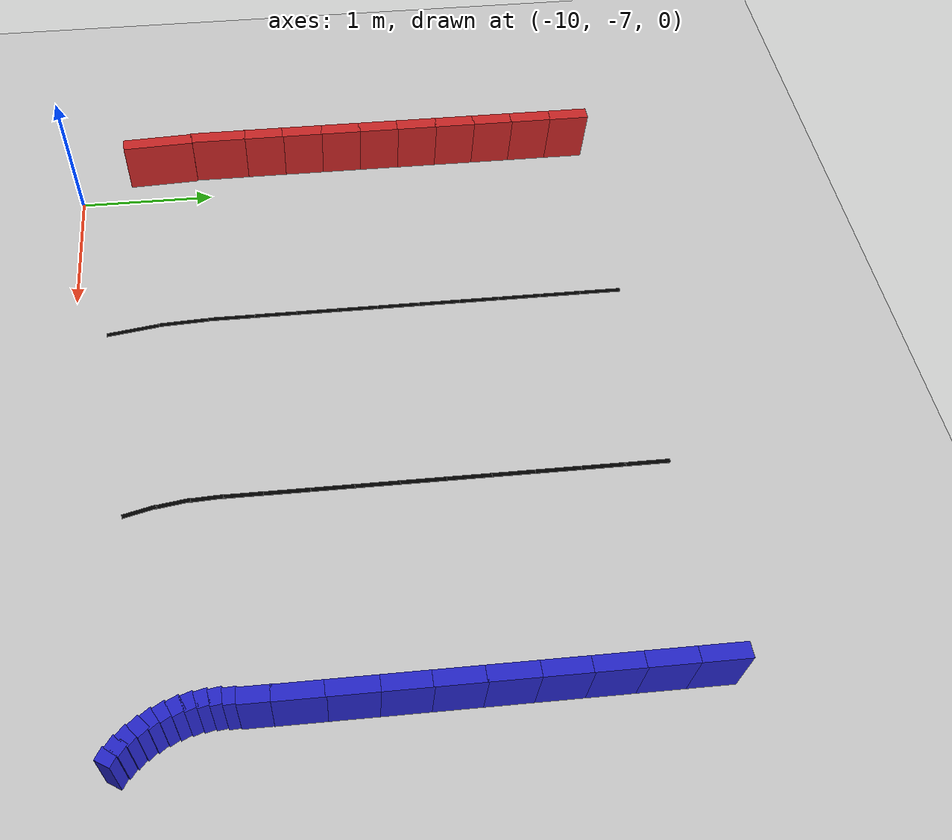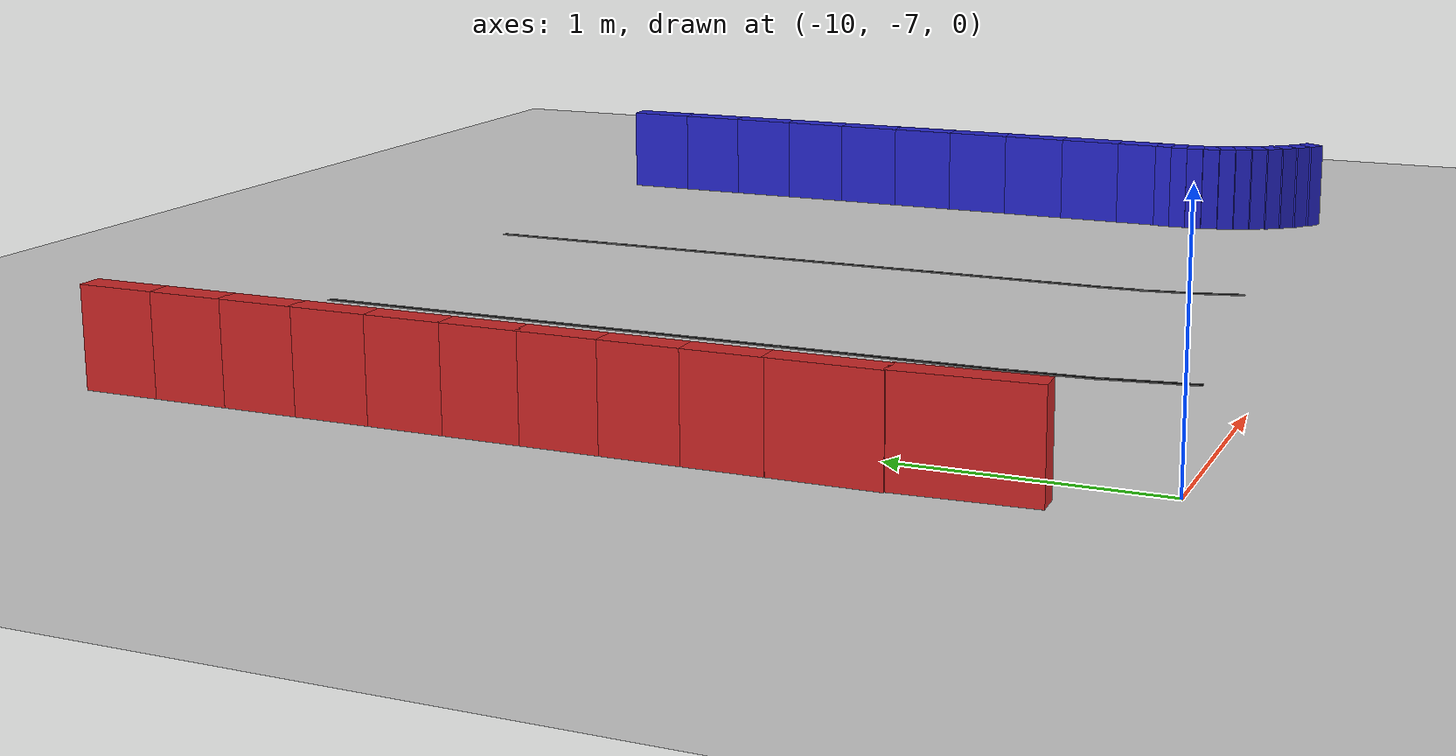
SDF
<sdf version="1.6">
 <world name="3lane_track">
  <include><uri>model://ground_plane</uri></include>
  <include><uri>model://sun</uri></include>
  <model name="iw_10">
   <static>true</static>
   <pose>-5.7500 -3.1500 0.200 0 0 -1.5708</pose>
   <link name="l">
    <collision name="c"><geometry><box><size>0.3100 0.1 0.4</size></box></geometry></collision>
    <visual name="v">
     <geometry><box><size>0.3100 0.1 0.4</size></box></geometry>
     <material><ambient>0.15 0.15 0.8 1</ambient><diffuse>0.15 0.15 0.8 1</diffuse></material>
    </visual>
   </link>
  </model>
  <model name="iw_11">
   <static>true</static>
   <pose>-5.7500 -3.4500 0.200 0 0 -1.5708</pose>
   <link name="l">
    <collision name="c"><geometry><box><size>0.3100 0.1 0.4</size></box></geometry></collision>
    <visual name="v">
     <geometry><box><size>0.3100 0.1 0.4</size></box></geometry>
     <material><ambient>0.15 0.15 0.8 1</ambient><diffuse>0.15 0.15 0.8 1</diffuse></material>
    </visual>
   </link>
  </model>
  <model name="iw_12">
   <static>true</static>
   <pose>-5.7500 -3.7500 0.200 0 0 -1.5708</pose>
   <link name="l">
    <collision name="c"><geometry><box><size>0.3100 0.1 0.4</size></box></geometry></collision>
    <visual name="v">
     <geometry><box><size>0.3100 0.1 0.4</size></box></geometry>
     <material><ambient>0.15 0.15 0.8 1</ambient><diffuse>0.15 0.15 0.8 1</diffuse></material>
    </visual>
   </link>
  </model>
  <model name="iw_13">
   <static>true</static>
   <pose>-5.7500 -4.0500 0.200 0 0 -1.5708</pose>
   <link name="l">
    <collision name="c"><geometry><box><size>0.3100 0.1 0.4</size></box></geometry></collision>
    <visual name="v">
     <geometry><box><size>0.3100 0.1 0.4</size></box></geometry>
     <material><ambient>0.15 0.15 0.8 1</ambient><diffuse>0.15 0.15 0.8 1</diffuse></material>
    </visual>
   </link>
  </model>
  <model name="iw_14">
   <static>true</static>
   <pose>-5.7500 -4.3500 0.200 0 0 -1.5708</pose>
   <link name="l">
    <collision name="c"><geometry><box><size>0.3100 0.1 0.4</size></box></geometry></collision>
    <visual name="v">
     <geometry><box><size>0.3100 0.1 0.4</size></box></geometry>
     <material><ambient>0.15 0.15 0.8 1</ambient><diffuse>0.15 0.15 0.8 1</diffuse></material>
    </visual>
   </link>
  </model>
  <model name="iw_15">
   <static>true</static>
   <pose>-5.7500 -4.6500 0.200 0 0 -1.5708</pose>
   <link name="l">
    <collision name="c"><geometry><box><size>0.3100 0.1 0.4</size></box></geometry></collision>
    <visual name="v">
     <geometry><box><size>0.3100 0.1 0.4</size></box></geometry>
     <material><ambient>0.15 0.15 0.8 1</ambient><diffuse>0.15 0.15 0.8 1</diffuse></material>
    </visual>
   </link>
  </model>
  <model name="iw_16">
   <static>true</static>
   <pose>-5.7500 -4.9500 0.200 0 0 -1.5708</pose>
   <link name="l">
    <collision name="c"><geometry><box><size>0.3100 0.1 0.4</size></box></geometry></collision>
    <visual name="v">
     <geometry><box><size>0.3100 0.1 0.4</size></box></geometry>
     <material><ambient>0.15 0.15 0.8 1</ambient><diffuse>0.15 0.15 0.8 1</diffuse></material>
    </visual>
   </link>
  </model>
  <model name="iw_17">
   <static>true</static>
   <pose>-5.7500 -5.2500 0.200 0 0 -1.5708</pose>
   <link name="l">
    <collision name="c"><geometry><box><size>0.3100 0.1 0.4</size></box></geometry></collision>
    <visual name="v">
     <geometry><box><size>0.3100 0.1 0.4</size></box></geometry>
     <material><ambient>0.15 0.15 0.8 1</ambient><diffuse>0.15 0.15 0.8 1</diffuse></material>
    </visual>
   </link>
  </model>
  <model name="iw_18">
   <static>true</static>
   <pose>-5.7500 -5.5500 0.200 0 0 -1.5708</pose>
   <link name="l">
    <collision name="c"><geometry><box><size>0.3100 0.1 0.4</size></box></geometry></collision>
    <visual name="v">
     <geometry><box><size>0.3100 0.1 0.4</size></box></geometry>
     <material><ambient>0.15 0.15 0.8 1</ambient><diffuse>0.15 0.15 0.8 1</diffuse></material>
    </visual>
   </link>
  </model>
  <model name="iw_19">
   <static>true</static>
   <pose>-5.7514 -5.7948 0.200 0 0 -1.5708</pose>
   <link name="l">
    <collision name="c"><geometry><box><size>0.1996 0.1 0.4</size></box></geometry></collision>
    <visual name="v">
     <geometry><box><size>0.1996 0.1 0.4</size></box></geometry>
     <material><ambient>0.15 0.15 0.8 1</ambient><diffuse>0.15 0.15 0.8 1</diffuse></material>
    </visual>
   </link>
  </model>
  <model name="iw_20">
   <static>true</static>
   <pose>-5.7563 -5.9268 0.200 0 0 -1.5217</pose>
   <link name="l">
    <collision name="c"><geometry><box><size>0.0847 0.1 0.4</size></box></geometry></collision>
    <visual name="v">
     <geometry><box><size>0.0847 0.1 0.4</size></box></geometry>
     <material><ambient>0.15 0.15 0.8 1</ambient><diffuse>0.15 0.15 0.8 1</diffuse></material>
    </visual>
   </link>
  </model>
  <model name="iw_21">
   <static>true</static>
   <pose>-5.7598 -6.0012 0.200 0 0 -1.4235</pose>
   <link name="l">
    <collision name="c"><geometry><box><size>0.0847 0.1 0.4</size></box></geometry></collision>
    <visual name="v">
     <geometry><box><size>0.0847 0.1 0.4</size></box></geometry>
     <material><ambient>0.15 0.15 0.8 1</ambient><diffuse>0.15 0.15 0.8 1</diffuse></material>
    </visual>
   </link>
  </model>
  <model name="iw_22">
   <static>true</static>
   <pose>-5.7561 -6.0757 0.200 0 0 -1.3254</pose>
   <link name="l">
    <collision name="c"><geometry><box><size>0.0847 0.1 0.4</size></box></geometry></collision>
    <visual name="v">
     <geometry><box><size>0.0847 0.1 0.4</size></box></geometry>
     <material><ambient>0.15 0.15 0.8 1</ambient><diffuse>0.15 0.15 0.8 1</diffuse></material>
    </visual>
   </link>
  </model>
  <model name="iw_23">
   <static>true</static>
   <pose>-5.7450 -6.1495 0.200 0 0 -1.2272</pose>
   <link name="l">
    <collision name="c"><geometry><box><size>0.0847 0.1 0.4</size></box></geometry></collision>
    <visual name="v">
     <geometry><box><size>0.0847 0.1 0.4</size></box></geometry>
     <material><ambient>0.15 0.15 0.8 1</ambient><diffuse>0.15 0.15 0.8 1</diffuse></material>
    </visual>
   </link>
  </model>
  <model name="iw_24">
   <static>true</static>
   <pose>-5.7268 -6.2218 0.200 0 0 -1.1290</pose>
   <link name="l">
    <collision name="c"><geometry><box><size>0.0847 0.1 0.4</size></box></geometry></collision>
    <visual name="v">
     <geometry><box><size>0.0847 0.1 0.4</size></box></geometry>
     <material><ambient>0.15 0.15 0.8 1</ambient><diffuse>0.15 0.15 0.8 1</diffuse></material>
    </visual>
   </link>
  </model>
  <model name="iw_25">
   <static>true</static>
   <pose>-5.7015 -6.2919 0.200 0 0 -1.0308</pose>
   <link name="l">
    <collision name="c"><geometry><box><size>0.0847 0.1 0.4</size></box></geometry></collision>
    <visual name="v">
     <geometry><box><size>0.0847 0.1 0.4</size></box></geometry>
     <material><ambient>0.15 0.15 0.8 1</ambient><diffuse>0.15 0.15 0.8 1</diffuse></material>
    </visual>
   </link>
  </model>
  <model name="iw_26">
   <static>true</static>
   <pose>-5.6695 -6.3593 0.200 0 0 -0.9327</pose>
   <link name="l">
    <collision name="c"><geometry><box><size>0.0847 0.1 0.4</size></box></geometry></collision>
    <visual name="v">
     <geometry><box><size>0.0847 0.1 0.4</size></box></geometry>
     <material><ambient>0.15 0.15 0.8 1</ambient><diffuse>0.15 0.15 0.8 1</diffuse></material>
    </visual>
   </link>
  </model>
  <model name="iw_27">
   <static>true</static>
   <pose>-5.6311 -6.4232 0.200 0 0 -0.8345</pose>
   <link name="l">
    <collision name="c"><geometry><box><size>0.0847 0.1 0.4</size></box></geometry></collision>
    <visual name="v">
     <geometry><box><size>0.0847 0.1 0.4</size></box></geometry>
     <material><ambient>0.15 0.15 0.8 1</ambient><diffuse>0.15 0.15 0.8 1</diffuse></material>
    </visual>
   </link>
  </model>
  <model name="iw_28">
   <static>true</static>
   <pose>-5.5866 -6.4830 0.200 0 0 -0.7363</pose>
   <link name="l">
    <collision name="c"><geometry><box><size>0.0847 0.1 0.4</size></box></geometry></collision>
    <visual name="v">
     <geometry><box><size>0.0847 0.1 0.4</size></box></geometry>
     <material><ambient>0.15 0.15 0.8 1</ambient><diffuse>0.15 0.15 0.8 1</diffuse></material>
    </visual>
   </link>
  </model>
  <model name="iw_29">
   <static>true</static>
   <pose>-5.5364 -6.5382 0.200 0 0 -0.6381</pose>
   <link name="l">
    <collision name="c"><geometry><box><size>0.0847 0.1 0.4</size></box></geometry></collision>
    <visual name="v">
     <geometry><box><size>0.0847 0.1 0.4</size></box></geometry>
     <material><ambient>0.15 0.15 0.8 1</ambient><diffuse>0.15 0.15 0.8 1</diffuse></material>
    </visual>
   </link>
  </model>
  <model name="iw_30">
   <static>true</static>
   <pose>-5.4811 -6.5882 0.200 0 0 -0.5400</pose>
   <link name="l">
    <collision name="c"><geometry><box><size>0.0847 0.1 0.4</size></box></geometry></collision>
    <visual name="v">
     <geometry><box><size>0.0847 0.1 0.4</size></box></geometry>
     <material><ambient>0.15 0.15 0.8 1</ambient><diffuse>0.15 0.15 0.8 1</diffuse></material>
    </visual>
   </link>
  </model>
  <model name="ow_10">
   <static>true</static>
   <pose>-10.2500 -3.1500 0.200 0 0 -1.5708</pose>
   <link name="l">
    <collision name="c"><geometry><box><size>0.3100 0.1 0.4</size></box></geometry></collision>
    <visual name="v">
     <geometry><box><size>0.3100 0.1 0.4</size></box></geometry>
     <material><ambient>0.8 0.15 0.15 1</ambient><diffuse>0.8 0.15 0.15 1</diffuse></material>
    </visual>
   </link>
  </model>
  <model name="ow_11">
   <static>true</static>
   <pose>-10.2500 -3.4500 0.200 0 0 -1.5708</pose>
   <link name="l">
    <collision name="c"><geometry><box><size>0.3100 0.1 0.4</size></box></geometry></collision>
    <visual name="v">
     <geometry><box><size>0.3100 0.1 0.4</size></box></geometry>
     <material><ambient>0.8 0.15 0.15 1</ambient><diffuse>0.8 0.15 0.15 1</diffuse></material>
    </visual>
   </link>
  </model>
  <model name="ow_12">
   <static>true</static>
   <pose>-10.2500 -3.7500 0.200 0 0 -1.5708</pose>
   <link name="l">
    <collision name="c"><geometry><box><size>0.3100 0.1 0.4</size></box></geometry></collision>
    <visual name="v">
     <geometry><box><size>0.3100 0.1 0.4</size></box></geometry>
     <material><ambient>0.8 0.15 0.15 1</ambient><diffuse>0.8 0.15 0.15 1</diffuse></material>
    </visual>
   </link>
  </model>
  <model name="ow_13">
   <static>true</static>
   <pose>-10.2500 -4.0500 0.200 0 0 -1.5708</pose>
   <link name="l">
    <collision name="c"><geometry><box><size>0.3100 0.1 0.4</size></box></geometry></collision>
    <visual name="v">
     <geometry><box><size>0.3100 0.1 0.4</size></box></geometry>
     <material><ambient>0.8 0.15 0.15 1</ambient><diffuse>0.8 0.15 0.15 1</diffuse></material>
    </visual>
   </link>
  </model>
  <model name="ow_14">
   <static>true</static>
   <pose>-10.2500 -4.3500 0.200 0 0 -1.5708</pose>
   <link name="l">
    <collision name="c"><geometry><box><size>0.3100 0.1 0.4</size></box></geometry></collision>
    <visual name="v">
     <geometry><box><size>0.3100 0.1 0.4</size></box></geometry>
     <material><ambient>0.8 0.15 0.15 1</ambient><diffuse>0.8 0.15 0.15 1</diffuse></material>
    </visual>
   </link>
  </model>
  <model name="ow_15">
   <static>true</static>
   <pose>-10.2500 -4.6500 0.200 0 0 -1.5708</pose>
   <link name="l">
    <collision name="c"><geometry><box><size>0.3100 0.1 0.4</size></box></geometry></collision>
    <visual name="v">
     <geometry><box><size>0.3100 0.1 0.4</size></box></geometry>
     <material><ambient>0.8 0.15 0.15 1</ambient><diffuse>0.8 0.15 0.15 1</diffuse></material>
    </visual>
   </link>
  </model>
  <model name="ow_16">
   <static>true</static>
   <pose>-10.2500 -4.9500 0.200 0 0 -1.5708</pose>
   <link name="l">
    <collision name="c"><geometry><box><size>0.3100 0.1 0.4</size></box></geometry></collision>
    <visual name="v">
     <geometry><box><size>0.3100 0.1 0.4</size></box></geometry>
     <material><ambient>0.8 0.15 0.15 1</ambient><diffuse>0.8 0.15 0.15 1</diffuse></material>
    </visual>
   </link>
  </model>
  <model name="ow_17">
   <static>true</static>
   <pose>-10.2500 -5.2500 0.200 0 0 -1.5708</pose>
   <link name="l">
    <collision name="c"><geometry><box><size>0.3100 0.1 0.4</size></box></geometry></collision>
    <visual name="v">
     <geometry><box><size>0.3100 0.1 0.4</size></box></geometry>
     <material><ambient>0.8 0.15 0.15 1</ambient><diffuse>0.8 0.15 0.15 1</diffuse></material>
    </visual>
   </link>
  </model>
  <model name="ow_18">
   <static>true</static>
   <pose>-10.2500 -5.5500 0.200 0 0 -1.5708</pose>
   <link name="l">
    <collision name="c"><geometry><box><size>0.3100 0.1 0.4</size></box></geometry></collision>
    <visual name="v">
     <geometry><box><size>0.3100 0.1 0.4</size></box></geometry>
     <material><ambient>0.8 0.15 0.15 1</ambient><diffuse>0.8 0.15 0.15 1</diffuse></material>
    </visual>
   </link>
  </model>
  <model name="ow_19">
   <static>true</static>
   <pose>-10.2486 -5.9052 0.200 0 0 -1.5708</pose>
   <link name="l">
    <collision name="c"><geometry><box><size>0.4204 0.1 0.4</size></box></geometry></collision>
    <visual name="v">
     <geometry><box><size>0.4204 0.1 0.4</size></box></geometry>
     <material><ambient>0.8 0.15 0.15 1</ambient><diffuse>0.8 0.15 0.15 1</diffuse></material>
    </visual>
   </link>
  </model>
  <model name="ow_20">
   <static>true</static>
   <pose>-10.2292 -6.3673 0.200 0 0 -1.5217</pose>
   <link name="l">
    <collision name="c"><geometry><box><size>0.5251 0.1 0.4</size></box></geometry></collision>
    <visual name="v">
     <geometry><box><size>0.5251 0.1 0.4</size></box></geometry>
     <material><ambient>0.8 0.15 0.15 1</ambient><diffuse>0.8 0.15 0.15 1</diffuse></material>
    </visual>
   </link>
  </model>
  <model name="line_20">
   <static>true</static>
   <pose>-7.2500 -3.1500 0.002 0 0 -1.5708</pose>
   <link name="l">
    <visual name="v">
     <geometry><box><size>0.3100 0.03 0.002</size></box></geometry>
     <material><ambient>0 0 0 1</ambient><diffuse>0 0 0 1</diffuse></material>
    </visual>
   </link>
  </model>
  <model name="line_21">
   <static>true</static>
   <pose>-8.7500 -3.1500 0.002 0 0 -1.5708</pose>
   <link name="l">
    <visual name="v">
     <geometry><box><size>0.3100 0.03 0.002</size></box></geometry>
     <material><ambient>0 0 0 1</ambient><diffuse>0 0 0 1</diffuse></material>
    </visual>
   </link>
  </model>
  <model name="line_22">
   <static>true</static>
   <pose>-7.2500 -3.4500 0.002 0 0 -1.5708</pose>
   <link name="l">
    <visual name="v">
     <geometry><box><size>0.3100 0.03 0.002</size></box></geometry>
     <material><ambient>0 0 0 1</ambient><diffuse>0 0 0 1</diffuse></material>
    </visual>
   </link>
  </model>
  <model name="line_23">
   <static>true</static>
   <pose>-8.7500 -3.4500 0.002 0 0 -1.5708</pose>
   <link name="l">
    <visual name="v">
     <geometry><box><size>0.3100 0.03 0.002</size></box></geometry>
     <material><ambient>0 0 0 1</ambient><diffuse>0 0 0 1</diffuse></material>
    </visual>
   </link>
  </model>
  <model name="line_24">
   <static>true</static>
   <pose>-7.2500 -3.7500 0.002 0 0 -1.5708</pose>
   <link name="l">
    <visual name="v">
     <geometry><box><size>0.3100 0.03 0.002</size></box></geometry>
     <material><ambient>0 0 0 1</ambient><diffuse>0 0 0 1</diffuse></material>
    </visual>
   </link>
  </model>
  <model name="line_25">
   <static>true</static>
   <pose>-8.7500 -3.7500 0.002 0 0 -1.5708</pose>
   <link name="l">
    <visual name="v">
     <geometry><box><size>0.3100 0.03 0.002</size></box></geometry>
     <material><ambient>0 0 0 1</ambient><diffuse>0 0 0 1</diffuse></material>
    </visual>
   </link>
  </model>
  <model name="line_26">
   <static>true</static>
   <pose>-7.2500 -4.0500 0.002 0 0 -1.5708</pose>
   <link name="l">
    <visual name="v">
     <geometry><box><size>0.3100 0.03 0.002</size></box></geometry>
     <material><ambient>0 0 0 1</ambient><diffuse>0 0 0 1</diffuse></material>
    </visual>
   </link>
  </model>
  <model name="line_27">
   <static>true</static>
   <pose>-8.7500 -4.0500 0.002 0 0 -1.5708</pose>
   <link name="l">
    <visual name="v">
     <geometry><box><size>0.3100 0.03 0.002</size></box></geometry>
     <material><ambient>0 0 0 1</ambient><diffuse>0 0 0 1</diffuse></material>
    </visual>
   </link>
  </model>
  <model name="line_28">
   <static>true</static>
   <pose>-7.2500 -4.3500 0.002 0 0 -1.5708</pose>
   <link name="l">
    <visual name="v">
     <geometry><box><size>0.3100 0.03 0.002</size></box></geometry>
     <material><ambient>0 0 0 1</ambient><diffuse>0 0 0 1</diffuse></material>
    </visual>
   </link>
  </model>
  <model name="line_29">
   <static>true</static>
   <pose>-8.7500 -4.3500 0.002 0 0 -1.5708</pose>
   <link name="l">
    <visual name="v">
     <geometry><box><size>0.3100 0.03 0.002</size></box></geometry>
     <material><ambient>0 0 0 1</ambient><diffuse>0 0 0 1</diffuse></material>
    </visual>
   </link>
  </model>
  <model name="line_30">
   <static>true</static>
   <pose>-7.2500 -4.6500 0.002 0 0 -1.5708</pose>
   <link name="l">
    <visual name="v">
     <geometry><box><size>0.3100 0.03 0.002</size></box></geometry>
     <material><ambient>0 0 0 1</ambient><diffuse>0 0 0 1</diffuse></material>
    </visual>
   </link>
  </model>
  <model name="line_31">
   <static>true</static>
   <pose>-8.7500 -4.6500 0.002 0 0 -1.5708</pose>
   <link name="l">
    <visual name="v">
     <geometry><box><size>0.3100 0.03 0.002</size></box></geometry>
     <material><ambient>0 0 0 1</ambient><diffuse>0 0 0 1</diffuse></material>
    </visual>
   </link>
  </model>
  <model name="line_32">
   <static>true</static>
   <pose>-7.2500 -4.9500 0.002 0 0 -1.5708</pose>
   <link name="l">
    <visual name="v">
     <geometry><box><size>0.3100 0.03 0.002</size></box></geometry>
     <material><ambient>0 0 0 1</ambient><diffuse>0 0 0 1</diffuse></material>
    </visual>
   </link>
  </model>
  <model name="line_33">
   <static>true</static>
   <pose>-8.7500 -4.9500 0.002 0 0 -1.5708</pose>
   <link name="l">
    <visual name="v">
     <geometry><box><size>0.3100 0.03 0.002</size></box></geometry>
     <material><ambient>0 0 0 1</ambient><diffuse>0 0 0 1</diffuse></material>
    </visual>
   </link>
  </model>
  <model name="line_34">
   <static>true</static>
   <pose>-7.2500 -5.2500 0.002 0 0 -1.5708</pose>
   <link name="l">
    <visual name="v">
     <geometry><box><size>0.3100 0.03 0.002</size></box></geometry>
     <material><ambient>0 0 0 1</ambient><diffuse>0 0 0 1</diffuse></material>
    </visual>
   </link>
  </model>
  <model name="line_35">
   <static>true</static>
   <pose>-8.7500 -5.2500 0.002 0 0 -1.5708</pose>
   <link name="l">
    <visual name="v">
     <geometry><box><size>0.3100 0.03 0.002</size></box></geometry>
     <material><ambient>0 0 0 1</ambient><diffuse>0 0 0 1</diffuse></material>
    </visual>
   </link>
  </model>
  <model name="line_36">
   <static>true</static>
   <pose>-7.2500 -5.5500 0.002 0 0 -1.5708</pose>
   <link name="l">
    <visual name="v">
     <geometry><box><size>0.3100 0.03 0.002</size></box></geometry>
     <material><ambient>0 0 0 1</ambient><diffuse>0 0 0 1</diffuse></material>
    </visual>
   </link>
  </model>
  <model name="line_37">
   <static>true</static>
   <pose>-8.7500 -5.5500 0.002 0 0 -1.5708</pose>
   <link name="l">
    <visual name="v">
     <geometry><box><size>0.3100 0.03 0.002</size></box></geometry>
     <material><ambient>0 0 0 1</ambient><diffuse>0 0 0 1</diffuse></material>
    </visual>
   </link>
  </model>
  <model name="line_38">
   <static>true</static>
   <pose>-7.2505 -5.8316 0.002 0 0 -1.5708</pose>
   <link name="l">
    <visual name="v">
     <geometry><box><size>0.2732 0.03 0.002</size></box></geometry>
     <material><ambient>0 0 0 1</ambient><diffuse>0 0 0 1</diffuse></material>
    </visual>
   </link>
  </model>
  <model name="line_39">
   <static>true</static>
   <pose>-8.7495 -5.8684 0.002 0 0 -1.5708</pose>
   <link name="l">
    <visual name="v">
     <geometry><box><size>0.3468 0.03 0.002</size></box></geometry>
     <material><ambient>0 0 0 1</ambient><diffuse>0 0 0 1</diffuse></material>
    </visual>
   </link>
  </model>
  <model name="line_40">
   <static>true</static>
   <pose>-7.2473 -6.0736 0.002 0 0 -1.5217</pose>
   <link name="l">
    <visual name="v">
     <geometry><box><size>0.2309 0.03 0.002</size></box></geometry>
     <material><ambient>0 0 0 1</ambient><diffuse>0 0 0 1</diffuse></material>
    </visual>
   </link>
  </model>
  <model name="line_41">
   <static>true</static>
   <pose>-8.7383 -6.2205 0.002 0 0 -1.5217</pose>
   <link name="l">
    <visual name="v">
     <geometry><box><size>0.3779 0.03 0.002</size></box></geometry>
     <material><ambient>0 0 0 1</ambient><diffuse>0 0 0 1</diffuse></material>
    </visual>
   </link>
  </model>
  <model name="line_42">
   <static>true</static>
   <pose>-7.2293 -6.2935 0.002 0 0 -1.4235</pose>
   <link name="l">
    <visual name="v">
     <geometry><box><size>0.2309 0.03 0.002</size></box></geometry>
     <material><ambient>0 0 0 1</ambient><diffuse>0 0 0 1</diffuse></material>
    </visual>
   </link>
  </model>
  <model name="line_43">
   <static>true</static>
   <pose>-8.6987 -6.5858 0.002 0 0 -1.4235</pose>
   <link name="l">
    <visual name="v">
     <geometry><box><size>0.3779 0.03 0.002</size></box></geometry>
     <material><ambient>0 0 0 1</ambient><diffuse>0 0 0 1</diffuse></material>
    </visual>
   </link>
  </model>
  <model name="line_44">
   <static>true</static>
   <pose>-7.1897 -6.5106 0.002 0 0 -1.3254</pose>
   <link name="l">
    <visual name="v">
     <geometry><box><size>0.2309 0.03 0.002</size></box></geometry>
     <material><ambient>0 0 0 1</ambient><diffuse>0 0 0 1</diffuse></material>
    </visual>
   </link>
  </model>
 </world>
</sdf>
